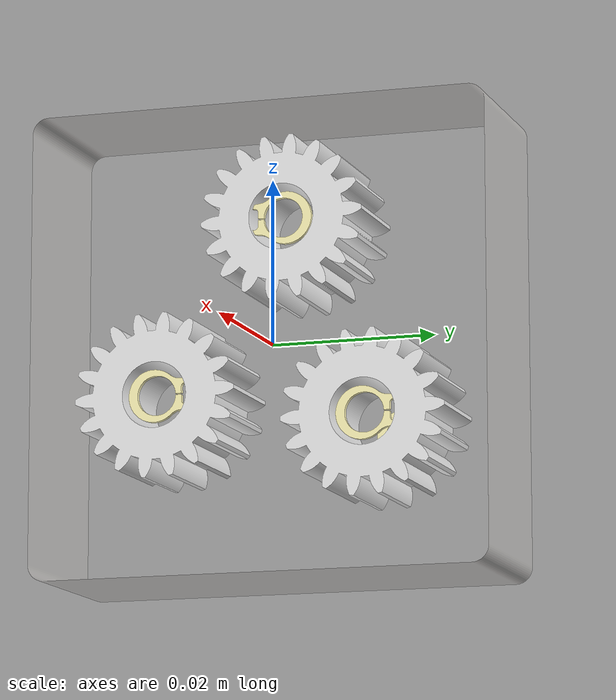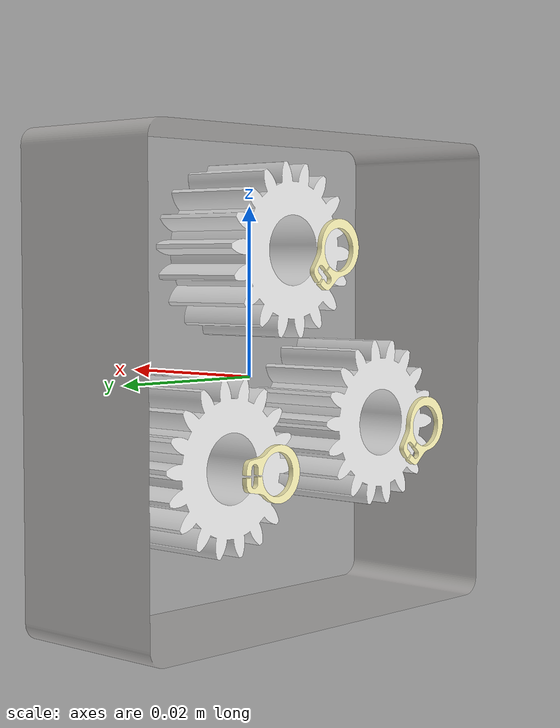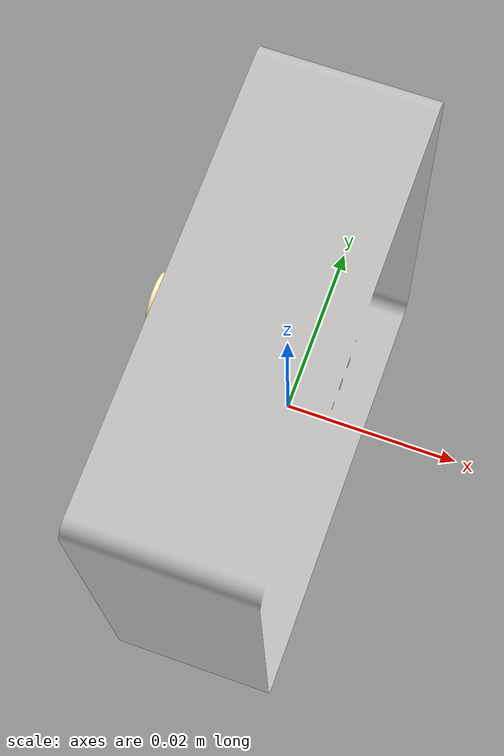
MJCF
<mujoco model="target">
  <compiler meshdir="assets" texturedir="assets" autolimits="true"/>
  <default>
    <default class="visual">
      <geom group="2" type="mesh" contype="0" conaffinity="0"/>
    </default>
    <default class="collision">
      <geom group="3" type="mesh"/>
    </default>
  </default>
  <asset>
    <material name="190,188,186" specular="0.7372549999999999" shininess="1.0" rgba="0.745098 0.737255 0.729412 1.000000"/>
    <material name="235,235,235" specular="1.0" shininess="1.0" rgba="0.921569 0.921569 0.921569 1.000000"/>
    <material name="255,247,185" specular="1.0" shininess="1.0" rgba="1.000000 0.968627 0.725490 1.000000"/>
    <mesh file="object_0.obj"/>
    <mesh file="object_1.obj"/>
    <mesh file="object_2.obj"/>
  </asset>
  <worldbody>
    <body name="object">
      <geom mesh="object_0" material="255,247,185" class="visual"/>
      <geom mesh="object_1" material="235,235,235" class="visual"/>
      <geom mesh="object_2" material="190,188,186" class="visual"/>
      <geom mesh="object_0" class="collision"/>
      <geom mesh="object_1" class="collision"/>
      <geom mesh="object_2" class="collision"/>
    </body>
  </worldbody>
</mujoco>
